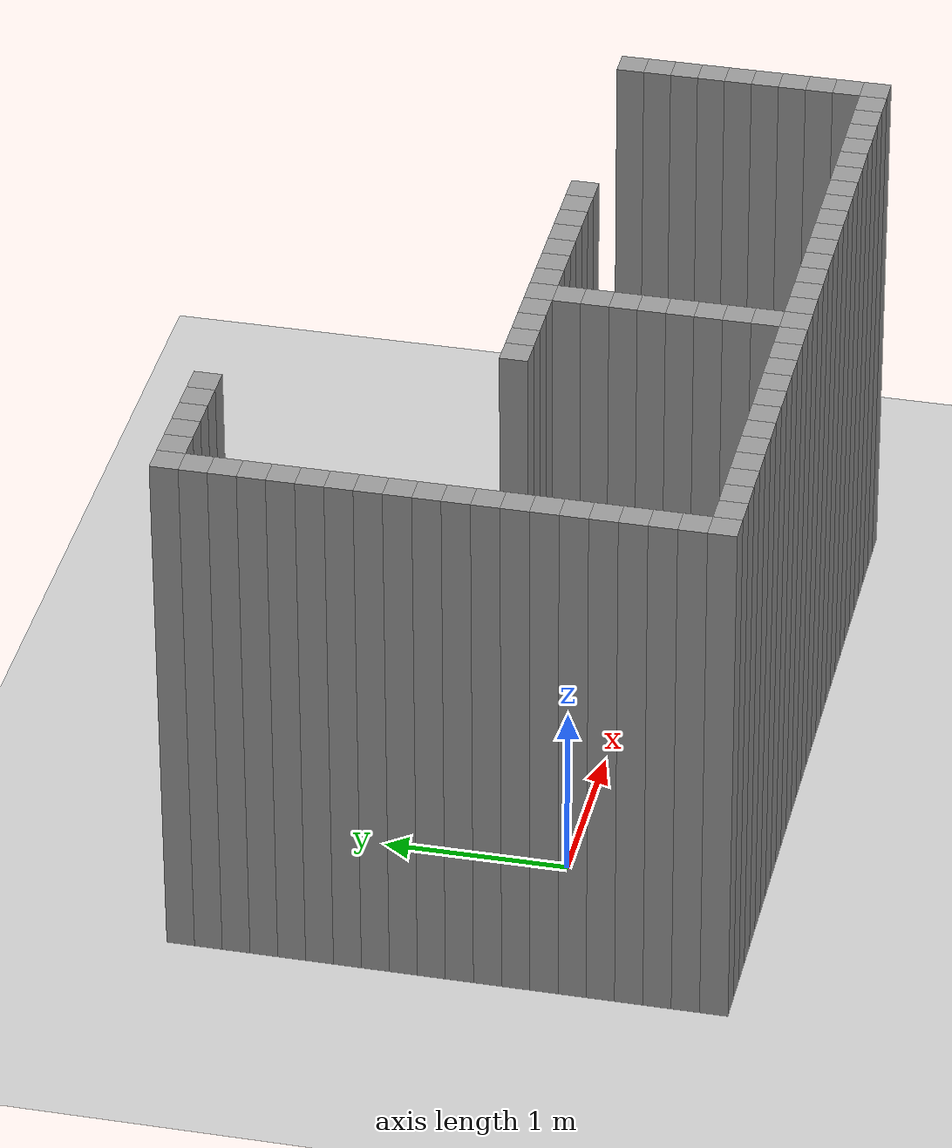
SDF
<sdf version="1.7">
 <world name="default">
  <model name="ground_plane">
   <static>1</static>
   <link name="link">
    <collision name="collision">
     <geometry><plane><normal>0 0 1</normal><size>100 100</size></plane></geometry>
     <surface>
      <contact><collide_bitmask>65535</collide_bitmask></contact>
      <friction><ode><mu>100</mu><mu2>50</mu2></ode></friction>
     </surface>
    </collision>
    <visual name="visual">
     <cast_shadows>0</cast_shadows>
     <geometry><plane><normal>0 0 1</normal><size>100 100</size></plane></geometry>
     <material>
      <script><uri>file://media/materials/scripts/gazebo.material</uri><name>Gazebo/Grey</name></script>
     </material>
    </visual>
   </link>
  </model>
  <model name="image45003">
   <pose>-1 -1 0 0 -0 0</pose>
   <link name="Wall_0">
    <collision name="Wall_0_Collision">
     <geometry><box><size>0.15 0.15 3</size></box></geometry>
     <pose>0 0 1.5 0 -0 0</pose>
    </collision>
    <visual name="Wall_0_Visual">
     <pose>0 0 1.5 0 -0 0</pose>
     <geometry><box><size>0.15 0.15 3</size></box></geometry>
     <material>
      <script><uri>file://media/materials/scripts/gazebo.material</uri><name>Gazebo/Grey</name></script>
      <ambient>1 1 1 1</ambient>
     </material>
     <meta><layer>0</layer></meta>
    </visual>
   </link>
   <link name="Wall_1">
    <collision name="Wall_1_Collision">
     <geometry><box><size>0.15 0.15 3</size></box></geometry>
     <pose>0 0 1.5 0 -0 0</pose>
    </collision>
    <visual name="Wall_1_Visual">
     <pose>0 0 1.5 0 -0 0</pose>
     <geometry><box><size>0.15 0.15 3</size></box></geometry>
     <material>
      <script><uri>file://media/materials/scripts/gazebo.material</uri><name>Gazebo/Grey</name></script>
      <ambient>1 1 1 1</ambient>
     </material>
     <meta><layer>0</layer></meta>
    </visual>
    <pose>0.0 0.15 0 0 -0 0</pose>
   </link>
   <link name="Wall_2">
    <collision name="Wall_2_Collision">
     <geometry><box><size>0.15 0.15 3</size></box></geometry>
     <pose>0 0 1.5 0 -0 0</pose>
    </collision>
    <visual name="Wall_2_Visual">
     <pose>0 0 1.5 0 -0 0</pose>
     <geometry><box><size>0.15 0.15 3</size></box></geometry>
     <material>
      <script><uri>file://media/materials/scripts/gazebo.material</uri><name>Gazebo/Grey</name></script>
      <ambient>1 1 1 1</ambient>
     </material>
     <meta><layer>0</layer></meta>
    </visual>
    <pose>0.0 0.3 0 0 -0 0</pose>
   </link>
   <link name="Wall_3">
    <collision name="Wall_3_Collision">
     <geometry><box><size>0.15 0.15 3</size></box></geometry>
     <pose>0 0 1.5 0 -0 0</pose>
    </collision>
    <visual name="Wall_3_Visual">
     <pose>0 0 1.5 0 -0 0</pose>
     <geometry><box><size>0.15 0.15 3</size></box></geometry>
     <material>
      <script><uri>file://media/materials/scripts/gazebo.material</uri><name>Gazebo/Grey</name></script>
      <ambient>1 1 1 1</ambient>
     </material>
     <meta><layer>0</layer></meta>
    </visual>
    <pose>0.0 0.44999999999999996 0 0 -0 0</pose>
   </link>
   <link name="Wall_4">
    <collision name="Wall_4_Collision">
     <geometry><box><size>0.15 0.15 3</size></box></geometry>
     <pose>0 0 1.5 0 -0 0</pose>
    </collision>
    <visual name="Wall_4_Visual">
     <pose>0 0 1.5 0 -0 0</pose>
     <geometry><box><size>0.15 0.15 3</size></box></geometry>
     <material>
      <script><uri>file://media/materials/scripts/gazebo.material</uri><name>Gazebo/Grey</name></script>
      <ambient>1 1 1 1</ambient>
     </material>
     <meta><layer>0</layer></meta>
    </visual>
    <pose>0.0 0.6 0 0 -0 0</pose>
   </link>
   <link name="Wall_5">
    <collision name="Wall_5_Collision">
     <geometry><box><size>0.15 0.15 3</size></box></geometry>
     <pose>0 0 1.5 0 -0 0</pose>
    </collision>
    <visual name="Wall_5_Visual">
     <pose>0 0 1.5 0 -0 0</pose>
     <geometry><box><size>0.15 0.15 3</size></box></geometry>
     <material>
      <script><uri>file://media/materials/scripts/gazebo.material</uri><name>Gazebo/Grey</name></script>
      <ambient>1 1 1 1</ambient>
     </material>
     <meta><layer>0</layer></meta>
    </visual>
    <pose>0.0 0.75 0 0 -0 0</pose>
   </link>
   <link name="Wall_6">
    <collision name="Wall_6_Collision">
     <geometry><box><size>0.15 0.15 3</size></box></geometry>
     <pose>0 0 1.5 0 -0 0</pose>
    </collision>
    <visual name="Wall_6_Visual">
     <pose>0 0 1.5 0 -0 0</pose>
     <geometry><box><size>0.15 0.15 3</size></box></geometry>
     <material>
      <script><uri>file://media/materials/scripts/gazebo.material</uri><name>Gazebo/Grey</name></script>
      <ambient>1 1 1 1</ambient>
     </material>
     <meta><layer>0</layer></meta>
    </visual>
    <pose>0.0 0.8999999999999999 0 0 -0 0</pose>
   </link>
   <link name="Wall_7">
    <collision name="Wall_7_Collision">
     <geometry><box><size>0.15 0.15 3</size></box></geometry>
     <pose>0 0 1.5 0 -0 0</pose>
    </collision>
    <visual name="Wall_7_Visual">
     <pose>0 0 1.5 0 -0 0</pose>
     <geometry><box><size>0.15 0.15 3</size></box></geometry>
     <material>
      <script><uri>file://media/materials/scripts/gazebo.material</uri><name>Gazebo/Grey</name></script>
      <ambient>1 1 1 1</ambient>
     </material>
     <meta><layer>0</layer></meta>
    </visual>
    <pose>0.0 1.05 0 0 -0 0</pose>
   </link>
   <link name="Wall_8">
    <collision name="Wall_8_Collision">
     <geometry><box><size>0.15 0.15 3</size></box></geometry>
     <pose>0 0 1.5 0 -0 0</pose>
    </collision>
    <visual name="Wall_8_Visual">
     <pose>0 0 1.5 0 -0 0</pose>
     <geometry><box><size>0.15 0.15 3</size></box></geometry>
     <material>
      <script><uri>file://media/materials/scripts/gazebo.material</uri><name>Gazebo/Grey</name></script>
      <ambient>1 1 1 1</ambient>
     </material>
     <meta><layer>0</layer></meta>
    </visual>
    <pose>0.0 1.2 0 0 -0 0</pose>
   </link>
   <link name="Wall_9">
    <collision name="Wall_9_Collision">
     <geometry><box><size>0.15 0.15 3</size></box></geometry>
     <pose>0 0 1.5 0 -0 0</pose>
    </collision>
    <visual name="Wall_9_Visual">
     <pose>0 0 1.5 0 -0 0</pose>
     <geometry><box><size>0.15 0.15 3</size></box></geometry>
     <material>
      <script><uri>file://media/materials/scripts/gazebo.material</uri><name>Gazebo/Grey</name></script>
      <ambient>1 1 1 1</ambient>
     </material>
     <meta><layer>0</layer></meta>
    </visual>
    <pose>0.0 1.3499999999999999 0 0 -0 0</pose>
   </link>
   <link name="Wall_10">
    <collision name="Wall_10_Collision">
     <geometry><box><size>0.15 0.15 3</size></box></geometry>
     <pose>0 0 1.5 0 -0 0</pose>
    </collision>
    <visual name="Wall_10_Visual">
     <pose>0 0 1.5 0 -0 0</pose>
     <geometry><box><size>0.15 0.15 3</size></box></geometry>
     <material>
      <script><uri>file://media/materials/scripts/gazebo.material</uri><name>Gazebo/Grey</name></script>
      <ambient>1 1 1 1</ambient>
     </material>
     <meta><layer>0</layer></meta>
    </visual>
    <pose>0.0 1.5 0 0 -0 0</pose>
   </link>
   <link name="Wall_11">
    <collision name="Wall_11_Collision">
     <geometry><box><size>0.15 0.15 3</size></box></geometry>
     <pose>0 0 1.5 0 -0 0</pose>
    </collision>
    <visual name="Wall_11_Visual">
     <pose>0 0 1.5 0 -0 0</pose>
     <geometry><box><size>0.15 0.15 3</size></box></geometry>
     <material>
      <script><uri>file://media/materials/scripts/gazebo.material</uri><name>Gazebo/Grey</name></script>
      <ambient>1 1 1 1</ambient>
     </material>
     <meta><layer>0</layer></meta>
    </visual>
    <pose>0.0 1.65 0 0 -0 0</pose>
   </link>
   <link name="Wall_12">
    <collision name="Wall_12_Collision">
     <geometry><box><size>0.15 0.15 3</size></box></geometry>
     <pose>0 0 1.5 0 -0 0</pose>
    </collision>
    <visual name="Wall_12_Visual">
     <pose>0 0 1.5 0 -0 0</pose>
     <geometry><box><size>0.15 0.15 3</size></box></geometry>
     <material>
      <script><uri>file://media/materials/scripts/gazebo.material</uri><name>Gazebo/Grey</name></script>
      <ambient>1 1 1 1</ambient>
     </material>
     <meta><layer>0</layer></meta>
    </visual>
    <pose>0.0 1.7999999999999998 0 0 -0 0</pose>
   </link>
   <link name="Wall_13">
    <collision name="Wall_13_Collision">
     <geometry><box><size>0.15 0.15 3</size></box></geometry>
     <pose>0 0 1.5 0 -0 0</pose>
    </collision>
    <visual name="Wall_13_Visual">
     <pose>0 0 1.5 0 -0 0</pose>
     <geometry><box><size>0.15 0.15 3</size></box></geometry>
     <material>
      <script><uri>file://media/materials/scripts/gazebo.material</uri><name>Gazebo/Grey</name></script>
      <ambient>1 1 1 1</ambient>
     </material>
     <meta><layer>0</layer></meta>
    </visual>
    <pose>0.0 1.95 0 0 -0 0</pose>
   </link>
   <link name="Wall_14">
    <collision name="Wall_14_Collision">
     <geometry><box><size>0.15 0.15 3</size></box></geometry>
     <pose>0 0 1.5 0 -0 0</pose>
    </collision>
    <visual name="Wall_14_Visual">
     <pose>0 0 1.5 0 -0 0</pose>
     <geometry><box><size>0.15 0.15 3</size></box></geometry>
     <material>
      <script><uri>file://media/materials/scripts/gazebo.material</uri><name>Gazebo/Grey</name></script>
      <ambient>1 1 1 1</ambient>
     </material>
     <meta><layer>0</layer></meta>
    </visual>
    <pose>0.0 2.1 0 0 -0 0</pose>
   </link>
   <link name="Wall_15">
    <collision name="Wall_15_Collision">
     <geometry><box><size>0.15 0.15 3</size></box></geometry>
     <pose>0 0 1.5 0 -0 0</pose>
    </collision>
    <visual name="Wall_15_Visual">
     <pose>0 0 1.5 0 -0 0</pose>
     <geometry><box><size>0.15 0.15 3</size></box></geometry>
     <material>
      <script><uri>file://media/materials/scripts/gazebo.material</uri><name>Gazebo/Grey</name></script>
      <ambient>1 1 1 1</ambient>
     </material>
     <meta><layer>0</layer></meta>
    </visual>
    <pose>0.0 2.25 0 0 -0 0</pose>
   </link>
   <link name="Wall_16">
    <collision name="Wall_16_Collision">
     <geometry><box><size>0.15 0.15 3</size></box></geometry>
     <pose>0 0 1.5 0 -0 0</pose>
    </collision>
    <visual name="Wall_16_Visual">
     <pose>0 0 1.5 0 -0 0</pose>
     <geometry><box><size>0.15 0.15 3</size></box></geometry>
     <material>
      <script><uri>file://media/materials/scripts/gazebo.material</uri><name>Gazebo/Grey</name></script>
      <ambient>1 1 1 1</ambient>
     </material>
     <meta><layer>0</layer></meta>
    </visual>
    <pose>0.0 2.4 0 0 -0 0</pose>
   </link>
   <link name="Wall_17">
    <collision name="Wall_17_Collision">
     <geometry><box><size>0.15 0.15 3</size></box></geometry>
     <pose>0 0 1.5 0 -0 0</pose>
    </collision>
    <visual name="Wall_17_Visual">
     <pose>0 0 1.5 0 -0 0</pose>
     <geometry><box><size>0.15 0.15 3</size></box></geometry>
     <material>
      <script><uri>file://media/materials/scripts/gazebo.material</uri><name>Gazebo/Grey</name></script>
      <ambient>1 1 1 1</ambient>
     </material>
     <meta><layer>0</layer></meta>
    </visual>
    <pose>0.0 2.55 0 0 -0 0</pose>
   </link>
   <link name="Wall_18">
    <collision name="Wall_18_Collision">
     <geometry><box><size>0.15 0.15 3</size></box></geometry>
     <pose>0 0 1.5 0 -0 0</pose>
    </collision>
    <visual name="Wall_18_Visual">
     <pose>0 0 1.5 0 -0 0</pose>
     <geometry><box><size>0.15 0.15 3</size></box></geometry>
     <material>
      <script><uri>file://media/materials/scripts/gazebo.material</uri><name>Gazebo/Grey</name></script>
      <ambient>1 1 1 1</ambient>
     </material>
     <meta><layer>0</layer></meta>
    </visual>
    <pose>0.0 2.6999999999999997 0 0 -0 0</pose>
   </link>
   <link name="Wall_19">
    <collision name="Wall_19_Collision">
     <geometry><box><size>0.15 0.15 3</size></box></geometry>
     <pose>0 0 1.5 0 -0 0</pose>
    </collision>
    <visual name="Wall_19_Visual">
     <pose>0 0 1.5 0 -0 0</pose>
     <geometry><box><size>0.15 0.15 3</size></box></geometry>
     <material>
      <script><uri>file://media/materials/scripts/gazebo.material</uri><name>Gazebo/Grey</name></script>
      <ambient>1 1 1 1</ambient>
     </material>
     <meta><layer>0</layer></meta>
    </visual>
    <pose>0.0 2.85 0 0 -0 0</pose>
   </link>
   <link name="Wall_60">
    <collision name="Wall_60_Collision">
     <geometry><box><size>0.15 0.15 3</size></box></geometry>
     <pose>0 0 1.5 0 -0 0</pose>
    </collision>
    <visual name="Wall_60_Visual">
     <pose>0 0 1.5 0 -0 0</pose>
     <geometry><box><size>0.15 0.15 3</size></box></geometry>
     <material>
      <script><uri>file://media/materials/scripts/gazebo.material</uri><name>Gazebo/Grey</name></script>
      <ambient>1 1 1 1</ambient>
     </material>
     <meta><layer>0</layer></meta>
    </visual>
    <pose>0.15 0.0 0 0 -0 0</pose>
   </link>
   <link name="Wall_61">
    <collision name="Wall_61_Collision">
     <geometry><box><size>0.15 0.15 3</size></box></geometry>
     <pose>0 0 1.5 0 -0 0</pose>
    </collision>
    <visual name="Wall_61_Visual">
     <pose>0 0 1.5 0 -0 0</pose>
     <geometry><box><size>0.15 0.15 3</size></box></geometry>
     <material>
      <script><uri>file://media/materials/scripts/gazebo.material</uri><name>Gazebo/Grey</name></script>
      <ambient>1 1 1 1</ambient>
     </material>
     <meta><layer>0</layer></meta>
    </visual>
    <pose>0.15 2.85 0 0 -0 0</pose>
   </link>
   <link name="Wall_65">
    <collision name="Wall_65_Collision">
     <geometry><box><size>0.15 0.15 3</size></box></geometry>
     <pose>0 0 1.5 0 -0 0</pose>
    </collision>
    <visual name="Wall_65_Visual">
     <pose>0 0 1.5 0 -0 0</pose>
     <geometry><box><size>0.15 0.15 3</size></box></geometry>
     <material>
      <script><uri>file://media/materials/scripts/gazebo.material</uri><name>Gazebo/Grey</name></script>
      <ambient>1 1 1 1</ambient>
     </material>
     <meta><layer>0</layer></meta>
    </visual>
    <pose>0.3 0.0 0 0 -0 0</pose>
   </link>
   <link name="Wall_66">
    <collision name="Wall_66_Collision">
     <geometry><box><size>0.15 0.15 3</size></box></geometry>
     <pose>0 0 1.5 0 -0 0</pose>
    </collision>
    <visual name="Wall_66_Visual">
     <pose>0 0 1.5 0 -0 0</pose>
     <geometry><box><size>0.15 0.15 3</size></box></geometry>
     <material>
      <script><uri>file://media/materials/scripts/gazebo.material</uri><name>Gazebo/Grey</name></script>
      <ambient>1 1 1 1</ambient>
     </material>
     <meta><layer>0</layer></meta>
    </visual>
    <pose>0.3 2.85 0 0 -0 0</pose>
   </link>
   <link name="Wall_69">
    <collision name="Wall_69_Collision">
     <geometry><box><size>0.15 0.15 3</size></box></geometry>
     <pose>0 0 1.5 0 -0 0</pose>
    </collision>
    <visual name="Wall_69_Visual">
     <pose>0 0 1.5 0 -0 0</pose>
     <geometry><box><size>0.15 0.15 3</size></box></geometry>
     <material>
      <script><uri>file://media/materials/scripts/gazebo.material</uri><name>Gazebo/Grey</name></script>
      <ambient>1 1 1 1</ambient>
     </material>
     <meta><layer>0</layer></meta>
    </visual>
    <pose>0.44999999999999996 0.0 0 0 -0 0</pose>
   </link>
   <link name="Wall_70">
    <collision name="Wall_70_Collision">
     <geometry><box><size>0.15 0.15 3</size></box></geometry>
     <pose>0 0 1.5 0 -0 0</pose>
    </collision>
    <visual name="Wall_70_Visual">
     <pose>0 0 1.5 0 -0 0</pose>
     <geometry><box><size>0.15 0.15 3</size></box></geometry>
     <material>
      <script><uri>file://media/materials/scripts/gazebo.material</uri><name>Gazebo/Grey</name></script>
      <ambient>1 1 1 1</ambient>
     </material>
     <meta><layer>0</layer></meta>
    </visual>
    <pose>0.44999999999999996 2.85 0 0 -0 0</pose>
   </link>
   <link name="Wall_73">
    <collision name="Wall_73_Collision">
     <geometry><box><size>0.15 0.15 3</size></box></geometry>
     <pose>0 0 1.5 0 -0 0</pose>
    </collision>
    <visual name="Wall_73_Visual">
     <pose>0 0 1.5 0 -0 0</pose>
     <geometry><box><size>0.15 0.15 3</size></box></geometry>
     <material>
      <script><uri>file://media/materials/scripts/gazebo.material</uri><name>Gazebo/Grey</name></script>
      <ambient>1 1 1 1</ambient>
     </material>
     <meta><layer>0</layer></meta>
    </visual>
    <pose>0.6 0.0 0 0 -0 0</pose>
   </link>
   <link name="Wall_74">
    <collision name="Wall_74_Collision">
     <geometry><box><size>0.15 0.15 3</size></box></geometry>
     <pose>0 0 1.5 0 -0 0</pose>
    </collision>
    <visual name="Wall_74_Visual">
     <pose>0 0 1.5 0 -0 0</pose>
     <geometry><box><size>0.15 0.15 3</size></box></geometry>
     <material>
      <script><uri>file://media/materials/scripts/gazebo.material</uri><name>Gazebo/Grey</name></script>
      <ambient>1 1 1 1</ambient>
     </material>
     <meta><layer>0</layer></meta>
    </visual>
    <pose>0.6 2.85 0 0 -0 0</pose>
   </link>
   <link name="Wall_77">
    <collision name="Wall_77_Collision">
     <geometry><box><size>0.15 0.15 3</size></box></geometry>
     <pose>0 0 1.5 0 -0 0</pose>
    </collision>
    <visual name="Wall_77_Visual">
     <pose>0 0 1.5 0 -0 0</pose>
     <geometry><box><size>0.15 0.15 3</size></box></geometry>
     <material>
      <script><uri>file://media/materials/scripts/gazebo.material</uri><name>Gazebo/Grey</name></script>
      <ambient>1 1 1 1</ambient>
     </material>
     <meta><layer>0</layer></meta>
    </visual>
    <pose>0.75 0.0 0 0 -0 0</pose>
   </link>
   <link name="Wall_78">
    <collision name="Wall_78_Collision">
     <geometry><box><size>0.15 0.15 3</size></box></geometry>
     <pose>0 0 1.5 0 -0 0</pose>
    </collision>
    <visual name="Wall_78_Visual">
     <pose>0 0 1.5 0 -0 0</pose>
     <geometry><box><size>0.15 0.15 3</size></box></geometry>
     <material>
      <script><uri>file://media/materials/scripts/gazebo.material</uri><name>Gazebo/Grey</name></script>
      <ambient>1 1 1 1</ambient>
     </material>
     <meta><layer>0</layer></meta>
    </visual>
    <pose>0.75 2.85 0 0 -0 0</pose>
   </link>
   <link name="Wall_81">
    <collision name="Wall_81_Collision">
     <geometry><box><size>0.15 0.15 3</size></box></geometry>
     <pose>0 0 1.5 0 -0 0</pose>
    </collision>
    <visual name="Wall_81_Visual">
     <pose>0 0 1.5 0 -0 0</pose>
     <geometry><box><size>0.15 0.15 3</size></box></geometry>
     <material>
      <script><uri>file://media/materials/scripts/gazebo.material</uri><name>Gazebo/Grey</name></script>
      <ambient>1 1 1 1</ambient>
     </material>
     <meta><layer>0</layer></meta>
    </visual>
    <pose>0.8999999999999999 0.0 0 0 -0 0</pose>
   </link>
   <link name="Wall_85">
    <collision name="Wall_85_Collision">
     <geometry><box><size>0.15 0.15 3</size></box></geometry>
     <pose>0 0 1.5 0 -0 0</pose>
    </collision>
    <visual name="Wall_85_Visual">
     <pose>0 0 1.5 0 -0 0</pose>
     <geometry><box><size>0.15 0.15 3</size></box></geometry>
     <material>
      <script><uri>file://media/materials/scripts/gazebo.material</uri><name>Gazebo/Grey</name></script>
      <ambient>1 1 1 1</ambient>
     </material>
     <meta><layer>0</layer></meta>
    </visual>
    <pose>1.05 0.0 0 0 -0 0</pose>
   </link>
   <link name="Wall_89">
    <collision name="Wall_89_Collision">
     <geometry><box><size>0.15 0.15 3</size></box></geometry>
     <pose>0 0 1.5 0 -0 0</pose>
    </collision>
    <visual name="Wall_89_Visual">
     <pose>0 0 1.5 0 -0 0</pose>
     <geometry><box><size>0.15 0.15 3</size></box></geometry>
     <material>
      <script><uri>file://media/materials/scripts/gazebo.material</uri><name>Gazebo/Grey</name></script>
      <ambient>1 1 1 1</ambient>
     </material>
     <meta><layer>0</layer></meta>
    </visual>
    <pose>1.2 0.0 0 0 -0 0</pose>
   </link>
   <link name="Wall_94">
    <collision name="Wall_94_Collision">
     <geometry><box><size>0.15 0.15 3</size></box></geometry>
     <pose>0 0 1.5 0 -0 0</pose>
    </collision>
    <visual name="Wall_94_Visual">
     <pose>0 0 1.5 0 -0 0</pose>
     <geometry><box><size>0.15 0.15 3</size></box></geometry>
     <material>
      <script><uri>file://media/materials/scripts/gazebo.material</uri><name>Gazebo/Grey</name></script>
      <ambient>1 1 1 1</ambient>
     </material>
     <meta><layer>0</layer></meta>
    </visual>
    <pose>1.3499999999999999 0.0 0 0 -0 0</pose>
   </link>
   <link name="Wall_95">
    <collision name="Wall_95_Collision">
     <geometry><box><size>0.15 0.15 3</size></box></geometry>
     <pose>0 0 1.5 0 -0 0</pose>
    </collision>
    <visual name="Wall_95_Visual">
     <pose>0 0 1.5 0 -0 0</pose>
     <geometry><box><size>0.15 0.15 3</size></box></geometry>
     <material>
      <script><uri>file://media/materials/scripts/gazebo.material</uri><name>Gazebo/Grey</name></script>
      <ambient>1 1 1 1</ambient>
     </material>
     <meta><layer>0</layer></meta>
    </visual>
    <pose>1.3499999999999999 1.3499999999999999 0 0 -0 0</pose>
   </link>
   <link name="Wall_100">
    <collision name="Wall_100_Collision">
     <geometry><box><size>0.15 0.15 3</size></box></geometry>
     <pose>0 0 1.5 0 -0 0</pose>
    </collision>
    <visual name="Wall_100_Visual">
     <pose>0 0 1.5 0 -0 0</pose>
     <geometry><box><size>0.15 0.15 3</size></box></geometry>
     <material>
      <script><uri>file://media/materials/scripts/gazebo.material</uri><name>Gazebo/Grey</name></script>
      <ambient>1 1 1 1</ambient>
     </material>
     <meta><layer>0</layer></meta>
    </visual>
    <pose>1.5 0.0 0 0 -0 0</pose>
   </link>
   <link name="Wall_101">
    <collision name="Wall_101_Collision">
     <geometry><box><size>0.15 0.15 3</size></box></geometry>
     <pose>0 0 1.5 0 -0 0</pose>
    </collision>
    <visual name="Wall_101_Visual">
     <pose>0 0 1.5 0 -0 0</pose>
     <geometry><box><size>0.15 0.15 3</size></box></geometry>
     <material>
      <script><uri>file://media/materials/scripts/gazebo.material</uri><name>Gazebo/Grey</name></script>
      <ambient>1 1 1 1</ambient>
     </material>
     <meta><layer>0</layer></meta>
    </visual>
    <pose>1.5 1.3499999999999999 0 0 -0 0</pose>
   </link>
   <link name="Wall_106">
    <collision name="Wall_106_Collision">
     <geometry><box><size>0.15 0.15 3</size></box></geometry>
     <pose>0 0 1.5 0 -0 0</pose>
    </collision>
    <visual name="Wall_106_Visual">
     <pose>0 0 1.5 0 -0 0</pose>
     <geometry><box><size>0.15 0.15 3</size></box></geometry>
     <material>
      <script><uri>file://media/materials/scripts/gazebo.material</uri><name>Gazebo/Grey</name></script>
      <ambient>1 1 1 1</ambient>
     </material>
     <meta><layer>0</layer></meta>
    </visual>
    <pose>1.65 0.0 0 0 -0 0</pose>
   </link>
   <link name="Wall_107">
    <collision name="Wall_107_Collision">
     <geometry><box><size>0.15 0.15 3</size></box></geometry>
     <pose>0 0 1.5 0 -0 0</pose>
    </collision>
    <visual name="Wall_107_Visual">
     <pose>0 0 1.5 0 -0 0</pose>
     <geometry><box><size>0.15 0.15 3</size></box></geometry>
     <material>
      <script><uri>file://media/materials/scripts/gazebo.material</uri><name>Gazebo/Grey</name></script>
      <ambient>1 1 1 1</ambient>
     </material>
     <meta><layer>0</layer></meta>
    </visual>
    <pose>1.65 1.3499999999999999 0 0 -0 0</pose>
   </link>
   <link name="Wall_112">
    <collision name="Wall_112_Collision">
     <geometry><box><size>0.15 0.15 3</size></box></geometry>
     <pose>0 0 1.5 0 -0 0</pose>
    </collision>
    <visual name="Wall_112_Visual">
     <pose>0 0 1.5 0 -0 0</pose>
     <geometry><box><size>0.15 0.15 3</size></box></geometry>
     <material>
      <script><uri>file://media/materials/scripts/gazebo.material</uri><name>Gazebo/Grey</name></script>
      <ambient>1 1 1 1</ambient>
     </material>
     <meta><layer>0</layer></meta>
    </visual>
    <pose>1.7999999999999998 0.0 0 0 -0 0</pose>
   </link>
   <link name="Wall_113">
    <collision name="Wall_113_Collision">
     <geometry><box><size>0.15 0.15 3</size></box></geometry>
     <pose>0 0 1.5 0 -0 0</pose>
    </collision>
    <visual name="Wall_113_Visual">
     <pose>0 0 1.5 0 -0 0</pose>
     <geometry><box><size>0.15 0.15 3</size></box></geometry>
     <material>
      <script><uri>file://media/materials/scripts/gazebo.material</uri><name>Gazebo/Grey</name></script>
      <ambient>1 1 1 1</ambient>
     </material>
     <meta><layer>0</layer></meta>
    </visual>
    <pose>1.7999999999999998 1.3499999999999999 0 0 -0 0</pose>
   </link>
   <link name="Wall_118">
    <collision name="Wall_118_Collision">
     <geometry><box><size>0.15 0.15 3</size></box></geometry>
     <pose>0 0 1.5 0 -0 0</pose>
    </collision>
    <visual name="Wall_118_Visual">
     <pose>0 0 1.5 0 -0 0</pose>
     <geometry><box><size>0.15 0.15 3</size></box></geometry>
     <material>
      <script><uri>file://media/materials/scripts/gazebo.material</uri><name>Gazebo/Grey</name></script>
      <ambient>1 1 1 1</ambient>
     </material>
     <meta><layer>0</layer></meta>
    </visual>
    <pose>1.95 0.0 0 0 -0 0</pose>
   </link>
   <link name="Wall_119">
    <collision name="Wall_119_Collision">
     <geometry><box><size>0.15 0.15 3</size></box></geometry>
     <pose>0 0 1.5 0 -0 0</pose>
    </collision>
    <visual name="Wall_119_Visual">
     <pose>0 0 1.5 0 -0 0</pose>
     <geometry><box><size>0.15 0.15 3</size></box></geometry>
     <material>
      <script><uri>file://media/materials/scripts/gazebo.material</uri><name>Gazebo/Grey</name></script>
      <ambient>1 1 1 1</ambient>
     </material>
     <meta><layer>0</layer></meta>
    </visual>
    <pose>1.95 0.15 0 0 -0 0</pose>
   </link>
   <link name="Wall_120">
    <collision name="Wall_120_Collision">
     <geometry><box><size>0.15 0.15 3</size></box></geometry>
     <pose>0 0 1.5 0 -0 0</pose>
    </collision>
    <visual name="Wall_120_Visual">
     <pose>0 0 1.5 0 -0 0</pose>
     <geometry><box><size>0.15 0.15 3</size></box></geometry>
     <material>
      <script><uri>file://media/materials/scripts/gazebo.material</uri><name>Gazebo/Grey</name></script>
      <ambient>1 1 1 1</ambient>
     </material>
     <meta><layer>0</layer></meta>
    </visual>
    <pose>1.95 0.3 0 0 -0 0</pose>
   </link>
   <link name="Wall_121">
    <collision name="Wall_121_Collision">
     <geometry><box><size>0.15 0.15 3</size></box></geometry>
     <pose>0 0 1.5 0 -0 0</pose>
    </collision>
    <visual name="Wall_121_Visual">
     <pose>0 0 1.5 0 -0 0</pose>
     <geometry><box><size>0.15 0.15 3</size></box></geometry>
     <material>
      <script><uri>file://media/materials/scripts/gazebo.material</uri><name>Gazebo/Grey</name></script>
      <ambient>1 1 1 1</ambient>
     </material>
     <meta><layer>0</layer></meta>
    </visual>
    <pose>1.95 0.44999999999999996 0 0 -0 0</pose>
   </link>
   <link name="Wall_122">
    <collision name="Wall_122_Collision">
     <geometry><box><size>0.15 0.15 3</size></box></geometry>
     <pose>0 0 1.5 0 -0 0</pose>
    </collision>
    <visual name="Wall_122_Visual">
     <pose>0 0 1.5 0 -0 0</pose>
     <geometry><box><size>0.15 0.15 3</size></box></geometry>
     <material>
      <script><uri>file://media/materials/scripts/gazebo.material</uri><name>Gazebo/Grey</name></script>
      <ambient>1 1 1 1</ambient>
     </material>
     <meta><layer>0</layer></meta>
    </visual>
    <pose>1.95 0.6 0 0 -0 0</pose>
   </link>
   <link name="Wall_123">
    <collision name="Wall_123_Collision">
     <geometry><box><size>0.15 0.15 3</size></box></geometry>
     <pose>0 0 1.5 0 -0 0</pose>
    </collision>
    <visual name="Wall_123_Visual">
     <pose>0 0 1.5 0 -0 0</pose>
     <geometry><box><size>0.15 0.15 3</size></box></geometry>
     <material>
      <script><uri>file://media/materials/scripts/gazebo.material</uri><name>Gazebo/Grey</name></script>
      <ambient>1 1 1 1</ambient>
     </material>
     <meta><layer>0</layer></meta>
    </visual>
    <pose>1.95 0.75 0 0 -0 0</pose>
   </link>
   <link name="Wall_124">
    <collision name="Wall_124_Collision">
     <geometry><box><size>0.15 0.15 3</size></box></geometry>
     <pose>0 0 1.5 0 -0 0</pose>
    </collision>
    <visual name="Wall_124_Visual">
     <pose>0 0 1.5 0 -0 0</pose>
     <geometry><box><size>0.15 0.15 3</size></box></geometry>
     <material>
      <script><uri>file://media/materials/scripts/gazebo.material</uri><name>Gazebo/Grey</name></script>
      <ambient>1 1 1 1</ambient>
     </material>
     <meta><layer>0</layer></meta>
    </visual>
    <pose>1.95 0.8999999999999999 0 0 -0 0</pose>
   </link>
   <link name="Wall_125">
    <collision name="Wall_125_Collision">
     <geometry><box><size>0.15 0.15 3</size></box></geometry>
     <pose>0 0 1.5 0 -0 0</pose>
    </collision>
    <visual name="Wall_125_Visual">
     <pose>0 0 1.5 0 -0 0</pose>
     <geometry><box><size>0.15 0.15 3</size></box></geometry>
     <material>
      <script><uri>file://media/materials/scripts/gazebo.material</uri><name>Gazebo/Grey</name></script>
      <ambient>1 1 1 1</ambient>
     </material>
     <meta><layer>0</layer></meta>
    </visual>
    <pose>1.95 1.05 0 0 -0 0</pose>
   </link>
   <link name="Wall_126">
    <collision name="Wall_126_Collision">
     <geometry><box><size>0.15 0.15 3</size></box></geometry>
     <pose>0 0 1.5 0 -0 0</pose>
    </collision>
    <visual name="Wall_126_Visual">
     <pose>0 0 1.5 0 -0 0</pose>
     <geometry><box><size>0.15 0.15 3</size></box></geometry>
     <material>
      <script><uri>file://media/materials/scripts/gazebo.material</uri><name>Gazebo/Grey</name></script>
      <ambient>1 1 1 1</ambient>
     </material>
     <meta><layer>0</layer></meta>
    </visual>
    <pose>1.95 1.2 0 0 -0 0</pose>
   </link>
   <link name="Wall_127">
    <collision name="Wall_127_Collision">
     <geometry><box><size>0.15 0.15 3</size></box></geometry>
     <pose>0 0 1.5 0 -0 0</pose>
    </collision>
    <visual name="Wall_127_Visual">
     <pose>0 0 1.5 0 -0 0</pose>
     <geometry><box><size>0.15 0.15 3</size></box></geometry>
     <material>
      <script><uri>file://media/materials/scripts/gazebo.material</uri><name>Gazebo/Grey</name></script>
      <ambient>1 1 1 1</ambient>
     </material>
     <meta><layer>0</layer></meta>
    </visual>
    <pose>1.95 1.3499999999999999 0 0 -0 0</pose>
   </link>
   <link name="Wall_145">
    <collision name="Wall_145_Collision">
     <geometry><box><size>0.15 0.15 3</size></box></geometry>
     <pose>0 0 1.5 0 -0 0</pose>
    </collision>
    <visual name="Wall_145_Visual">
     <pose>0 0 1.5 0 -0 0</pose>
     <geometry><box><size>0.15 0.15 3</size></box></geometry>
     <material>
      <script><uri>file://media/materials/scripts/gazebo.material</uri><name>Gazebo/Grey</name></script>
      <ambient>1 1 1 1</ambient>
     </material>
     <meta><layer>0</layer></meta>
    </visual>
    <pose>2.1 0.0 0 0 -0 0</pose>
   </link>
   <link name="Wall_146">
    <collision name="Wall_146_Collision">
     <geometry><box><size>0.15 0.15 3</size></box></geometry>
     <pose>0 0 1.5 0 -0 0</pose>
    </collision>
    <visual name="Wall_146_Visual">
     <pose>0 0 1.5 0 -0 0</pose>
     <geometry><box><size>0.15 0.15 3</size></box></geometry>
     <material>
      <script><uri>file://media/materials/scripts/gazebo.material</uri><name>Gazebo/Grey</name></script>
      <ambient>1 1 1 1</ambient>
     </material>
     <meta><layer>0</layer></meta>
    </visual>
    <pose>2.1 1.3499999999999999 0 0 -0 0</pose>
   </link>
   <link name="Wall_151">
    <collision name="Wall_151_Collision">
     <geometry><box><size>0.15 0.15 3</size></box></geometry>
     <pose>0 0 1.5 0 -0 0</pose>
    </collision>
    <visual name="Wall_151_Visual">
     <pose>0 0 1.5 0 -0 0</pose>
     <geometry><box><size>0.15 0.15 3</size></box></geometry>
     <material>
      <script><uri>file://media/materials/scripts/gazebo.material</uri><name>Gazebo/Grey</name></script>
      <ambient>1 1 1 1</ambient>
     </material>
     <meta><layer>0</layer></meta>
    </visual>
    <pose>2.25 0.0 0 0 -0 0</pose>
   </link>
   <link name="Wall_152">
    <collision name="Wall_152_Collision">
     <geometry><box><size>0.15 0.15 3</size></box></geometry>
     <pose>0 0 1.5 0 -0 0</pose>
    </collision>
    <visual name="Wall_152_Visual">
     <pose>0 0 1.5 0 -0 0</pose>
     <geometry><box><size>0.15 0.15 3</size></box></geometry>
     <material>
      <script><uri>file://media/materials/scripts/gazebo.material</uri><name>Gazebo/Grey</name></script>
      <ambient>1 1 1 1</ambient>
     </material>
     <meta><layer>0</layer></meta>
    </visual>
    <pose>2.25 1.3499999999999999 0 0 -0 0</pose>
   </link>
   <link name="Wall_157">
    <collision name="Wall_157_Collision">
     <geometry><box><size>0.15 0.15 3</size></box></geometry>
     <pose>0 0 1.5 0 -0 0</pose>
    </collision>
    <visual name="Wall_157_Visual">
     <pose>0 0 1.5 0 -0 0</pose>
     <geometry><box><size>0.15 0.15 3</size></box></geometry>
     <material>
      <script><uri>file://media/materials/scripts/gazebo.material</uri><name>Gazebo/Grey</name></script>
      <ambient>1 1 1 1</ambient>
     </material>
     <meta><layer>0</layer></meta>
    </visual>
    <pose>2.4 0.0 0 0 -0 0</pose>
   </link>
   <link name="Wall_158">
    <collision name="Wall_158_Collision">
     <geometry><box><size>0.15 0.15 3</size></box></geometry>
     <pose>0 0 1.5 0 -0 0</pose>
    </collision>
    <visual name="Wall_158_Visual">
     <pose>0 0 1.5 0 -0 0</pose>
     <geometry><box><size>0.15 0.15 3</size></box></geometry>
     <material>
      <script><uri>file://media/materials/scripts/gazebo.material</uri><name>Gazebo/Grey</name></script>
      <ambient>1 1 1 1</ambient>
     </material>
     <meta><layer>0</layer></meta>
    </visual>
    <pose>2.4 1.3499999999999999 0 0 -0 0</pose>
   </link>
   <link name="Wall_162">
    <collision name="Wall_162_Collision">
     <geometry><box><size>0.15 0.15 3</size></box></geometry>
     <pose>0 0 1.5 0 -0 0</pose>
    </collision>
    <visual name="Wall_162_Visual">
     <pose>0 0 1.5 0 -0 0</pose>
     <geometry><box><size>0.15 0.15 3</size></box></geometry>
     <material>
      <script><uri>file://media/materials/scripts/gazebo.material</uri><name>Gazebo/Grey</name></script>
      <ambient>1 1 1 1</ambient>
     </material>
     <meta><layer>0</layer></meta>
    </visual>
    <pose>2.55 0.0 0 0 -0 0</pose>
   </link>
   <link name="Wall_163">
    <collision name="Wall_163_Collision">
     <geometry><box><size>0.15 0.15 3</size></box></geometry>
     <pose>0 0 1.5 0 -0 0</pose>
    </collision>
    <visual name="Wall_163_Visual">
     <pose>0 0 1.5 0 -0 0</pose>
     <geometry><box><size>0.15 0.15 3</size></box></geometry>
     <material>
      <script><uri>file://media/materials/scripts/gazebo.material</uri><name>Gazebo/Grey</name></script>
      <ambient>1 1 1 1</ambient>
     </material>
     <meta><layer>0</layer></meta>
    </visual>
    <pose>2.55 1.3499999999999999 0 0 -0 0</pose>
   </link>
   <link name="Wall_167">
    <collision name="Wall_167_Collision">
     <geometry><box><size>0.15 0.15 3</size></box></geometry>
     <pose>0 0 1.5 0 -0 0</pose>
    </collision>
    <visual name="Wall_167_Visual">
     <pose>0 0 1.5 0 -0 0</pose>
     <geometry><box><size>0.15 0.15 3</size></box></geometry>
     <material>
      <script><uri>file://media/materials/scripts/gazebo.material</uri><name>Gazebo/Grey</name></script>
      <ambient>1 1 1 1</ambient>
     </material>
     <meta><layer>0</layer></meta>
    </visual>
    <pose>2.6999999999999997 0.0 0 0 -0 0</pose>
   </link>
   <link name="Wall_168">
    <collision name="Wall_168_Collision">
     <geometry><box><size>0.15 0.15 3</size></box></geometry>
     <pose>0 0 1.5 0 -0 0</pose>
    </collision>
    <visual name="Wall_168_Visual">
     <pose>0 0 1.5 0 -0 0</pose>
     <geometry><box><size>0.15 0.15 3</size></box></geometry>
     <material>
      <script><uri>file://media/materials/scripts/gazebo.material</uri><name>Gazebo/Grey</name></script>
      <ambient>1 1 1 1</ambient>
     </material>
     <meta><layer>0</layer></meta>
    </visual>
    <pose>2.6999999999999997 1.3499999999999999 0 0 -0 0</pose>
   </link>
   <link name="Wall_172">
    <collision name="Wall_172_Collision">
     <geometry><box><size>0.15 0.15 3</size></box></geometry>
     <pose>0 0 1.5 0 -0 0</pose>
    </collision>
    <visual name="Wall_172_Visual">
     <pose>0 0 1.5 0 -0 0</pose>
     <geometry><box><size>0.15 0.15 3</size></box></geometry>
     <material>
      <script><uri>file://media/materials/scripts/gazebo.material</uri><name>Gazebo/Grey</name></script>
      <ambient>1 1 1 1</ambient>
     </material>
     <meta><layer>0</layer></meta>
    </visual>
    <pose>2.85 0.0 0 0 -0 0</pose>
   </link>
   <link name="Wall_173">
    <collision name="Wall_173_Collision">
     <geometry><box><size>0.15 0.15 3</size></box></geometry>
     <pose>0 0 1.5 0 -0 0</pose>
    </collision>
    <visual name="Wall_173_Visual">
     <pose>0 0 1.5 0 -0 0</pose>
     <geometry><box><size>0.15 0.15 3</size></box></geometry>
     <material>
      <script><uri>file://media/materials/scripts/gazebo.material</uri><name>Gazebo/Grey</name></script>
      <ambient>1 1 1 1</ambient>
     </material>
     <meta><layer>0</layer></meta>
    </visual>
    <pose>2.85 1.3499999999999999 0 0 -0 0</pose>
   </link>
   <link name="Wall_186">
    <collision name="Wall_186_Collision">
     <geometry><box><size>0.15 0.15 3</size></box></geometry>
     <pose>0 0 1.5 0 -0 0</pose>
    </collision>
    <visual name="Wall_186_Visual">
     <pose>0 0 1.5 0 -0 0</pose>
     <geometry><box><size>0.15 0.15 3</size></box></geometry>
     <material>
      <script><uri>file://media/materials/scripts/gazebo.material</uri><name>Gazebo/Grey</name></script>
      <ambient>1 1 1 1</ambient>
     </material>
     <meta><layer>0</layer></meta>
    </visual>
    <pose>3.0 0.0 0 0 -0 0</pose>
   </link>
   <link name="Wall_187">
    <collision name="Wall_187_Collision">
     <geometry><box><size>0.15 0.15 3</size></box></geometry>
     <pose>0 0 1.5 0 -0 0</pose>
    </collision>
    <visual name="Wall_187_Visual">
     <pose>0 0 1.5 0 -0 0</pose>
     <geometry><box><size>0.15 0.15 3</size></box></geometry>
     <material>
      <script><uri>file://media/materials/scripts/gazebo.material</uri><name>Gazebo/Grey</name></script>
      <ambient>1 1 1 1</ambient>
     </material>
     <meta><layer>0</layer></meta>
    </visual>
    <pose>3.0 1.3499999999999999 0 0 -0 0</pose>
   </link>
   <link name="Wall_189">
    <collision name="Wall_189_Collision">
     <geometry><box><size>0.15 0.15 3</size></box></geometry>
     <pose>0 0 1.5 0 -0 0</pose>
    </collision>
    <visual name="Wall_189_Visual">
     <pose>0 0 1.5 0 -0 0</pose>
     <geometry><box><size>0.15 0.15 3</size></box></geometry>
     <material>
      <script><uri>file://media/materials/scripts/gazebo.material</uri><name>Gazebo/Grey</name></script>
      <ambient>1 1 1 1</ambient>
     </material>
     <meta><layer>0</layer></meta>
    </visual>
    <pose>3.15 0.0 0 0 -0 0</pose>
   </link>
   <link name="Wall_191">
    <collision name="Wall_191_Collision">
     <geometry><box><size>0.15 0.15 3</size></box></geometry>
     <pose>0 0 1.5 0 -0 0</pose>
    </collision>
    <visual name="Wall_191_Visual">
     <pose>0 0 1.5 0 -0 0</pose>
     <geometry><box><size>0.15 0.15 3</size></box></geometry>
     <material>
      <script><uri>file://media/materials/scripts/gazebo.material</uri><name>Gazebo/Grey</name></script>
      <ambient>1 1 1 1</ambient>
     </material>
     <meta><layer>0</layer></meta>
    </visual>
    <pose>3.3 0.0 0 0 -0 0</pose>
   </link>
   <link name="Wall_194">
    <collision name="Wall_194_Collision">
     <geometry><box><size>0.15 0.15 3</size></box></geometry>
     <pose>0 0 1.5 0 -0 0</pose>
    </collision>
    <visual name="Wall_194_Visual">
     <pose>0 0 1.5 0 -0 0</pose>
     <geometry><box><size>0.15 0.15 3</size></box></geometry>
     <material>
      <script><uri>file://media/materials/scripts/gazebo.material</uri><name>Gazebo/Grey</name></script>
      <ambient>1 1 1 1</ambient>
     </material>
     <meta><layer>0</layer></meta>
    </visual>
    <pose>3.4499999999999997 0.0 0 0 -0 0</pose>
   </link>
   <link name="Wall_197">
    <collision name="Wall_197_Collision">
     <geometry><box><size>0.15 0.15 3</size></box></geometry>
     <pose>0 0 1.5 0 -0 0</pose>
    </collision>
    <visual name="Wall_197_Visual">
     <pose>0 0 1.5 0 -0 0</pose>
     <geometry><box><size>0.15 0.15 3</size></box></geometry>
     <material>
      <script><uri>file://media/materials/scripts/gazebo.material</uri><name>Gazebo/Grey</name></script>
      <ambient>1 1 1 1</ambient>
     </material>
     <meta><layer>0</layer></meta>
    </visual>
    <pose>3.5999999999999996 0.0 0 0 -0 0</pose>
   </link>
   <link name="Wall_200">
    <collision name="Wall_200_Collision">
     <geometry><box><size>0.15 0.15 3</size></box></geometry>
     <pose>0 0 1.5 0 -0 0</pose>
    </collision>
    <visual name="Wall_200_Visual">
     <pose>0 0 1.5 0 -0 0</pose>
     <geometry><box><size>0.15 0.15 3</size></box></geometry>
     <material>
      <script><uri>file://media/materials/scripts/gazebo.material</uri><name>Gazebo/Grey</name></script>
      <ambient>1 1 1 1</ambient>
     </material>
     <meta><layer>0</layer></meta>
    </visual>
    <pose>3.75 0.0 0 0 -0 0</pose>
   </link>
   <link name="Wall_203">
    <collision name="Wall_203_Collision">
     <geometry><box><size>0.15 0.15 3</size></box></geometry>
     <pose>0 0 1.5 0 -0 0</pose>
    </collision>
    <visual name="Wall_203_Visual">
     <pose>0 0 1.5 0 -0 0</pose>
     <geometry><box><size>0.15 0.15 3</size></box></geometry>
     <material>
      <script><uri>file://media/materials/scripts/gazebo.material</uri><name>Gazebo/Grey</name></script>
      <ambient>1 1 1 1</ambient>
     </material>
     <meta><layer>0</layer></meta>
    </visual>
    <pose>3.9 0.0 0 0 -0 0</pose>
   </link>
   <link name="Wall_206">
    <collision name="Wall_206_Collision">
     <geometry><box><size>0.15 0.15 3</size></box></geometry>
     <pose>0 0 1.5 0 -0 0</pose>
    </collision>
    <visual name="Wall_206_Visual">
     <pose>0 0 1.5 0 -0 0</pose>
     <geometry><box><size>0.15 0.15 3</size></box></geometry>
     <material>
      <script><uri>file://media/materials/scripts/gazebo.material</uri><name>Gazebo/Grey</name></script>
      <ambient>1 1 1 1</ambient>
     </material>
     <meta><layer>0</layer></meta>
    </visual>
    <pose>4.05 0.0 0 0 -0 0</pose>
   </link>
   <link name="Wall_209">
    <collision name="Wall_209_Collision">
     <geometry><box><size>0.15 0.15 3</size></box></geometry>
     <pose>0 0 1.5 0 -0 0</pose>
    </collision>
    <visual name="Wall_209_Visual">
     <pose>0 0 1.5 0 -0 0</pose>
     <geometry><box><size>0.15 0.15 3</size></box></geometry>
     <material>
      <script><uri>file://media/materials/scripts/gazebo.material</uri><name>Gazebo/Grey</name></script>
      <ambient>1 1 1 1</ambient>
     </material>
     <meta><layer>0</layer></meta>
    </visual>
    <pose>4.2 0.0 0 0 -0 0</pose>
   </link>
   <link name="Wall_225">
    <collision name="Wall_225_Collision">
     <geometry><box><size>0.15 0.15 3</size></box></geometry>
     <pose>0 0 1.5 0 -0 0</pose>
    </collision>
    <visual name="Wall_225_Visual">
     <pose>0 0 1.5 0 -0 0</pose>
     <geometry><box><size>0.15 0.15 3</size></box></geometry>
     <material>
      <script><uri>file://media/materials/scripts/gazebo.material</uri><name>Gazebo/Grey</name></script>
      <ambient>1 1 1 1</ambient>
     </material>
     <meta><layer>0</layer></meta>
    </visual>
    <pose>4.35 0.0 0 0 -0 0</pose>
   </link>
   <link name="Wall_226">
    <collision name="Wall_226_Collision">
     <geometry><box><size>0.15 0.15 3</size></box></geometry>
     <pose>0 0 1.5 0 -0 0</pose>
    </collision>
    <visual name="Wall_226_Visual">
     <pose>0 0 1.5 0 -0 0</pose>
     <geometry><box><size>0.15 0.15 3</size></box></geometry>
     <material>
      <script><uri>file://media/materials/scripts/gazebo.material</uri><name>Gazebo/Grey</name></script>
      <ambient>1 1 1 1</ambient>
     </material>
     <meta><layer>0</layer></meta>
    </visual>
    <pose>4.35 0.15 0 0 -0 0</pose>
   </link>
   <link name="Wall_227">
    <collision name="Wall_227_Collision">
     <geometry><box><size>0.15 0.15 3</size></box></geometry>
     <pose>0 0 1.5 0 -0 0</pose>
    </collision>
    <visual name="Wall_227_Visual">
     <pose>0 0 1.5 0 -0 0</pose>
     <geometry><box><size>0.15 0.15 3</size></box></geometry>
     <material>
      <script><uri>file://media/materials/scripts/gazebo.material</uri><name>Gazebo/Grey</name></script>
      <ambient>1 1 1 1</ambient>
     </material>
     <meta><layer>0</layer></meta>
    </visual>
    <pose>4.35 0.3 0 0 -0 0</pose>
   </link>
   <link name="Wall_228">
    <collision name="Wall_228_Collision">
     <geometry><box><size>0.15 0.15 3</size></box></geometry>
     <pose>0 0 1.5 0 -0 0</pose>
    </collision>
    <visual name="Wall_228_Visual">
     <pose>0 0 1.5 0 -0 0</pose>
     <geometry><box><size>0.15 0.15 3</size></box></geometry>
     <material>
      <script><uri>file://media/materials/scripts/gazebo.material</uri><name>Gazebo/Grey</name></script>
      <ambient>1 1 1 1</ambient>
     </material>
     <meta><layer>0</layer></meta>
    </visual>
    <pose>4.35 0.44999999999999996 0 0 -0 0</pose>
   </link>
   <link name="Wall_229">
    <collision name="Wall_229_Collision">
     <geometry><box><size>0.15 0.15 3</size></box></geometry>
     <pose>0 0 1.5 0 -0 0</pose>
    </collision>
    <visual name="Wall_229_Visual">
     <pose>0 0 1.5 0 -0 0</pose>
     <geometry><box><size>0.15 0.15 3</size></box></geometry>
     <material>
      <script><uri>file://media/materials/scripts/gazebo.material</uri><name>Gazebo/Grey</name></script>
      <ambient>1 1 1 1</ambient>
     </material>
     <meta><layer>0</layer></meta>
    </visual>
    <pose>4.35 0.6 0 0 -0 0</pose>
   </link>
   <link name="Wall_230">
    <collision name="Wall_230_Collision">
     <geometry><box><size>0.15 0.15 3</size></box></geometry>
     <pose>0 0 1.5 0 -0 0</pose>
    </collision>
    <visual name="Wall_230_Visual">
     <pose>0 0 1.5 0 -0 0</pose>
     <geometry><box><size>0.15 0.15 3</size></box></geometry>
     <material>
      <script><uri>file://media/materials/scripts/gazebo.material</uri><name>Gazebo/Grey</name></script>
      <ambient>1 1 1 1</ambient>
     </material>
     <meta><layer>0</layer></meta>
    </visual>
    <pose>4.35 0.75 0 0 -0 0</pose>
   </link>
   <link name="Wall_231">
    <collision name="Wall_231_Collision">
     <geometry><box><size>0.15 0.15 3</size></box></geometry>
     <pose>0 0 1.5 0 -0 0</pose>
    </collision>
    <visual name="Wall_231_Visual">
     <pose>0 0 1.5 0 -0 0</pose>
     <geometry><box><size>0.15 0.15 3</size></box></geometry>
     <material>
      <script><uri>file://media/materials/scripts/gazebo.material</uri><name>Gazebo/Grey</name></script>
      <ambient>1 1 1 1</ambient>
     </material>
     <meta><layer>0</layer></meta>
    </visual>
    <pose>4.35 0.8999999999999999 0 0 -0 0</pose>
   </link>
   <link name="Wall_232">
    <collision name="Wall_232_Collision">
     <geometry><box><size>0.15 0.15 3</size></box></geometry>
     <pose>0 0 1.5 0 -0 0</pose>
    </collision>
    <visual name="Wall_232_Visual">
     <pose>0 0 1.5 0 -0 0</pose>
     <geometry><box><size>0.15 0.15 3</size></box></geometry>
     <material>
      <script><uri>file://media/materials/scripts/gazebo.material</uri><name>Gazebo/Grey</name></script>
      <ambient>1 1 1 1</ambient>
     </material>
     <meta><layer>0</layer></meta>
    </visual>
    <pose>4.35 1.05 0 0 -0 0</pose>
   </link>
   <link name="Wall_233">
    <collision name="Wall_233_Collision">
     <geometry><box><size>0.15 0.15 3</size></box></geometry>
     <pose>0 0 1.5 0 -0 0</pose>
    </collision>
    <visual name="Wall_233_Visual">
     <pose>0 0 1.5 0 -0 0</pose>
     <geometry><box><size>0.15 0.15 3</size></box></geometry>
     <material>
      <script><uri>file://media/materials/scripts/gazebo.material</uri><name>Gazebo/Grey</name></script>
      <ambient>1 1 1 1</ambient>
     </material>
     <meta><layer>0</layer></meta>
    </visual>
    <pose>4.35 1.2 0 0 -0 0</pose>
   </link>
   <link name="Wall_234">
    <collision name="Wall_234_Collision">
     <geometry><box><size>0.15 0.15 3</size></box></geometry>
     <pose>0 0 1.5 0 -0 0</pose>
    </collision>
    <visual name="Wall_234_Visual">
     <pose>0 0 1.5 0 -0 0</pose>
     <geometry><box><size>0.15 0.15 3</size></box></geometry>
     <material>
      <script><uri>file://media/materials/scripts/gazebo.material</uri><name>Gazebo/Grey</name></script>
      <ambient>1 1 1 1</ambient>
     </material>
     <meta><layer>0</layer></meta>
    </visual>
    <pose>4.35 1.3499999999999999 0 0 -0 0</pose>
   </link>
   <static>1</static>
  </model>
 </world>
</sdf>
